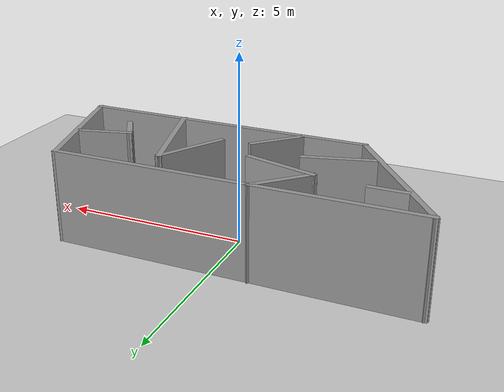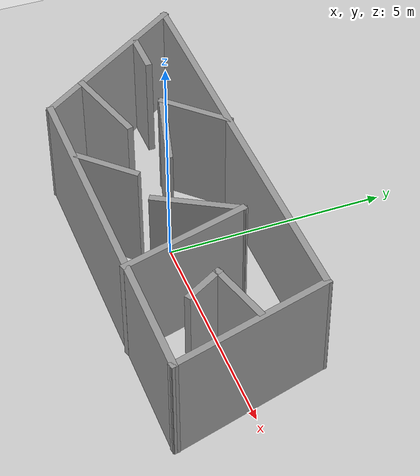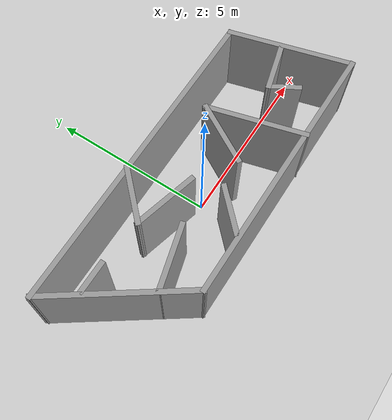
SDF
<sdf version="1.7">
 <world name="default">
  <light name="sun" type="directional">
   <pose>0 0 10 0 -0 0</pose>
   <diffuse>0.8 0.8 0.8 1</diffuse>
   <specular>0.2 0.2 0.2 1</specular>
   <attenuation>
    <range>1000</range>
    <constant>0.9</constant>
    <linear>0.01</linear>
    <quadratic>0.001</quadratic>
   </attenuation>
   <direction>-0.5 0.1 -0.9</direction>
   <spot><inner_angle>0</inner_angle><outer_angle>0</outer_angle><falloff>0</falloff></spot>
  </light>
  <model name="ground_plane">
   <static>1</static>
   <link name="link">
    <collision name="collision">
     <geometry><plane><normal>0 0 1</normal><size>100 100</size></plane></geometry>
     <surface><friction><ode><mu>100</mu><mu2>50</mu2></ode></friction></surface>
    </collision>
    <visual name="visual">
     <cast_shadows>0</cast_shadows>
     <geometry><plane><normal>0 0 1</normal><size>100 100</size></plane></geometry>
     <material>
      <script><uri>file://media/materials/scripts/gazebo.material</uri><name>Gazebo/Grey</name></script>
     </material>
    </visual>
   </link>
  </model>
  <gravity>0 0 -9.8</gravity>
  <magnetic_field>6e-06 2.3e-05 -4.2e-05</magnetic_field>
  <atmosphere type="adiabatic"/>
  <physics type="ode">
   <max_step_size>0.001</max_step_size>
   <real_time_factor>1</real_time_factor>
   <real_time_update_rate>1000</real_time_update_rate>
  </physics>
  <scene><ambient>0.4 0.4 0.4 1</ambient><background>0.7 0.7 0.7 1</background><shadows>1</shadows></scene>
  <audio><device>default</device></audio>
  <spherical_coordinates>
   <surface_model>EARTH_WGS84</surface_model>
   <latitude_deg>0</latitude_deg>
   <longitude_deg>0</longitude_deg>
   <elevation>0</elevation>
   <heading_deg>0</heading_deg>
  </spherical_coordinates>
  <model name="ROOM">
   <link name="Wall_0">
    <collision name="Wall_0_Collision">
     <geometry><box><size>8 0.15 2.5</size></box></geometry>
     <pose>0 0 1.25 0 -0 0</pose>
    </collision>
    <visual name="Wall_0_Visual">
     <pose>0 0 1.25 0 -0 0</pose>
     <geometry><box><size>8 0.15 2.5</size></box></geometry>
     <material>
      <script><uri>file://media/materials/scripts/gazebo.material</uri><name>Gazebo/Grey</name></script>
      <ambient>1 1 1 1</ambient>
     </material>
     <meta><layer>0</layer></meta>
    </visual>
    <pose>1.22217 -1.7407 0 0 -0 0</pose>
   </link>
   <link name="Wall_1">
    <collision name="Wall_1_Collision">
     <geometry><box><size>3.75 0.15 2.5</size></box></geometry>
     <pose>0 0 1.25 0 -0 0</pose>
    </collision>
    <visual name="Wall_1_Visual">
     <pose>0 0 1.25 0 -0 0</pose>
     <geometry><box><size>3.75 0.15 2.5</size></box></geometry>
     <material>
      <script><uri>file://media/materials/scripts/gazebo.material</uri><name>Gazebo/Grey</name></script>
      <ambient>1 1 1 1</ambient>
     </material>
     <meta><layer>0</layer></meta>
    </visual>
    <pose>4.68129 -0.00203 0 0 -0 1.8326</pose>
   </link>
   <link name="Wall_11">
    <collision name="Wall_11_Collision">
     <geometry><box><size>1.5 0.15 2.5</size></box></geometry>
     <pose>0 0 1.25 0 -0 0</pose>
    </collision>
    <visual name="Wall_11_Visual">
     <pose>0 0 1.25 0 -0 0</pose>
     <geometry><box><size>1.5 0.15 2.5</size></box></geometry>
     <material>
      <script><uri>file://media/materials/scripts/gazebo.material</uri><name>Gazebo/Grey</name></script>
      <ambient>1 1 1 1</ambient>
     </material>
     <meta><layer>0</layer></meta>
    </visual>
    <pose>3.8728 0.045865 0 0 -0 -2.87979</pose>
   </link>
   <link name="Wall_12">
    <collision name="Wall_12_Collision">
     <geometry><box><size>1 0.15 2.5</size></box></geometry>
     <pose>0 0 1.25 0 -0 0</pose>
    </collision>
    <visual name="Wall_12_Visual">
     <pose>0 0 1.25 0 -0 0</pose>
     <geometry><box><size>1 0.15 2.5</size></box></geometry>
     <material>
      <script><uri>file://media/materials/scripts/gazebo.material</uri><name>Gazebo/Grey</name></script>
      <ambient>1 1 1 1</ambient>
     </material>
     <meta><layer>0</layer></meta>
    </visual>
    <pose>3.4333 -0.496899 0 0 -0 -1.0472</pose>
   </link>
   <link name="Wall_14">
    <collision name="Wall_14_Collision">
     <geometry><box><size>2 0.15 2.5</size></box></geometry>
     <pose>0 0 1.25 0 -0 0</pose>
    </collision>
    <visual name="Wall_14_Visual">
     <pose>0 0 1.25 0 -0 0</pose>
     <geometry><box><size>2 0.15 2.5</size></box></geometry>
     <material>
      <script><uri>file://media/materials/scripts/gazebo.material</uri><name>Gazebo/Grey</name></script>
      <ambient>1 1 1 1</ambient>
     </material>
     <meta><layer>0</layer></meta>
    </visual>
    <pose>-2.43129 -0.592649 0 0 -0 0.261799</pose>
   </link>
   <link name="Wall_16">
    <collision name="Wall_16_Collision">
     <geometry><box><size>1 0.15 2.5</size></box></geometry>
     <pose>0 0 1.25 0 -0 0</pose>
    </collision>
    <visual name="Wall_16_Visual">
     <pose>0 0 1.25 0 -0 0</pose>
     <geometry><box><size>1 0.15 2.5</size></box></geometry>
     <material>
      <script><uri>file://media/materials/scripts/gazebo.material</uri><name>Gazebo/Grey</name></script>
      <ambient>1 1 1 1</ambient>
     </material>
     <meta><layer>0</layer></meta>
    </visual>
    <pose>-3.92232 0.761917 0 0 -0 0</pose>
   </link>
   <link name="Wall_18">
    <collision name="Wall_18_Collision">
     <geometry><box><size>1.5 0.15 2.5</size></box></geometry>
     <pose>0 0 1.25 0 -0 0</pose>
    </collision>
    <visual name="Wall_18_Visual">
     <pose>0 0 1.25 0 -0 0</pose>
     <geometry><box><size>1.5 0.15 2.5</size></box></geometry>
     <material>
      <script><uri>file://media/materials/scripts/gazebo.material</uri><name>Gazebo/Grey</name></script>
      <ambient>1 1 1 1</ambient>
     </material>
     <meta><layer>0</layer></meta>
    </visual>
    <pose>-0.531699 -1.16678 0 0 -0 0.785398</pose>
   </link>
   <link name="Wall_2">
    <collision name="Wall_2_Collision">
     <geometry><box><size>9.5 0.15 2.5</size></box></geometry>
     <pose>0 0 1.25 0 -0 0</pose>
    </collision>
    <visual name="Wall_2_Visual">
     <pose>0 0 1.25 0 -0 0</pose>
     <geometry><box><size>9.5 0.15 2.5</size></box></geometry>
     <material>
      <script><uri>file://media/materials/scripts/gazebo.material</uri><name>Gazebo/Grey</name></script>
      <ambient>1 1 1 1</ambient>
     </material>
     <meta><layer>0</layer></meta>
    </visual>
    <pose>-0.45958 1.73664 0 0 -0 3.14159</pose>
   </link>
   <link name="Wall_3">
    <collision name="Wall_3_Collision">
     <geometry><box><size>4.39326 0.15 2.5</size></box></geometry>
     <pose>0 0 1.25 0 -0 0</pose>
    </collision>
    <visual name="Wall_3_Visual">
     <pose>0 0 1.25 0 -0 0</pose>
     <geometry><box><size>4.39326 0.15 2.5</size></box></geometry>
     <material>
      <script><uri>file://media/materials/scripts/gazebo.material</uri><name>Gazebo/Grey</name></script>
      <ambient>1 1 1 1</ambient>
     </material>
     <meta><layer>0</layer></meta>
    </visual>
    <pose>-3.91871 -0.00203 0 0 -0 -0.960531</pose>
   </link>
   <link name="Wall_5">
    <collision name="Wall_5_Collision">
     <geometry><box><size>1.75 0.15 2.5</size></box></geometry>
     <pose>0 0 1.25 0 -0 0</pose>
    </collision>
    <visual name="Wall_5_Visual">
     <pose>0 0 1.25 0 -0 0</pose>
     <geometry><box><size>1.75 0.15 2.5</size></box></geometry>
     <material>
      <script><uri>file://media/materials/scripts/gazebo.material</uri><name>Gazebo/Grey</name></script>
      <ambient>1 1 1 1</ambient>
     </material>
     <meta><layer>0</layer></meta>
    </visual>
    <pose>-1.55558 1.18448 0 0 -0 -2.35619</pose>
   </link>
   <link name="Wall_6">
    <collision name="Wall_6_Collision">
     <geometry><box><size>2 0.15 2.5</size></box></geometry>
     <pose>0 0 1.25 0 -0 0</pose>
    </collision>
    <visual name="Wall_6_Visual">
     <pose>0 0 1.25 0 -0 0</pose>
     <geometry><box><size>2 0.15 2.5</size></box></geometry>
     <material>
      <script><uri>file://media/materials/scripts/gazebo.material</uri><name>Gazebo/Grey</name></script>
      <ambient>1 1 1 1</ambient>
     </material>
     <meta><layer>0</layer></meta>
    </visual>
    <pose>-1.22779 0.379391 0 0 -0 -0.261799</pose>
   </link>
   <link name="Wall_8">
    <collision name="Wall_8_Collision">
     <geometry><box><size>3 0.15 2.5</size></box></geometry>
     <pose>0 0 1.25 0 -0 0</pose>
    </collision>
    <visual name="Wall_8_Visual">
     <pose>0 0 1.25 0 -0 0</pose>
     <geometry><box><size>3 0.15 2.5</size></box></geometry>
     <material>
      <script><uri>file://media/materials/scripts/gazebo.material</uri><name>Gazebo/Grey</name></script>
      <ambient>1 1 1 1</ambient>
     </material>
     <meta><layer>0</layer></meta>
    </visual>
    <pose>2.08081 -0.387936 0 0 -0 1.8326</pose>
   </link>
   <link name="Wall_9">
    <collision name="Wall_9_Collision">
     <geometry><box><size>2 0.15 2.5</size></box></geometry>
     <pose>0 0 1.25 0 -0 0</pose>
    </collision>
    <visual name="Wall_9_Visual">
     <pose>0 0 1.25 0 -0 0</pose>
     <geometry><box><size>2 0.15 2.5</size></box></geometry>
     <material>
      <script><uri>file://media/materials/scripts/gazebo.material</uri><name>Gazebo/Grey</name></script>
      <ambient>1 1 1 1</ambient>
     </material>
     <meta><layer>0</layer></meta>
    </visual>
    <pose>1.24949 0.187435 0 0 -0 -2.0944</pose>
   </link>
   <static>1</static>
  </model>
 </world>
</sdf>
